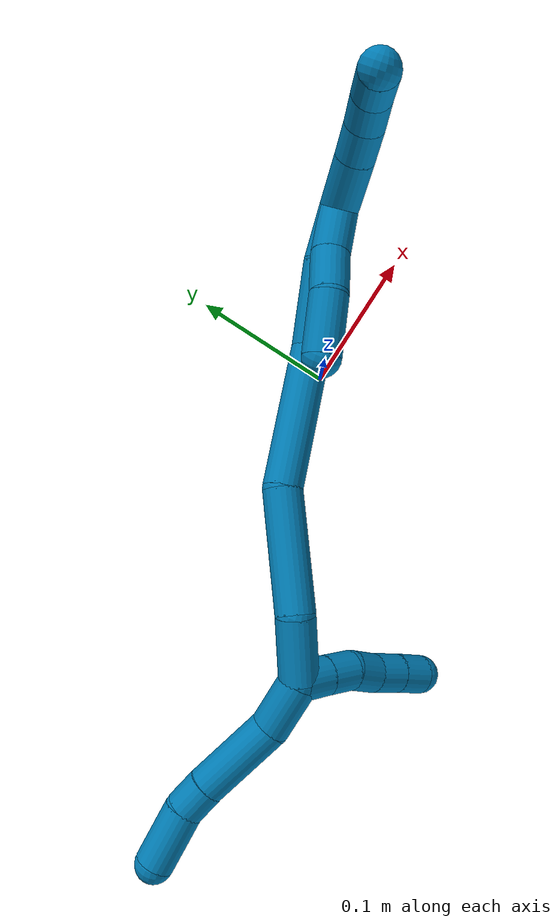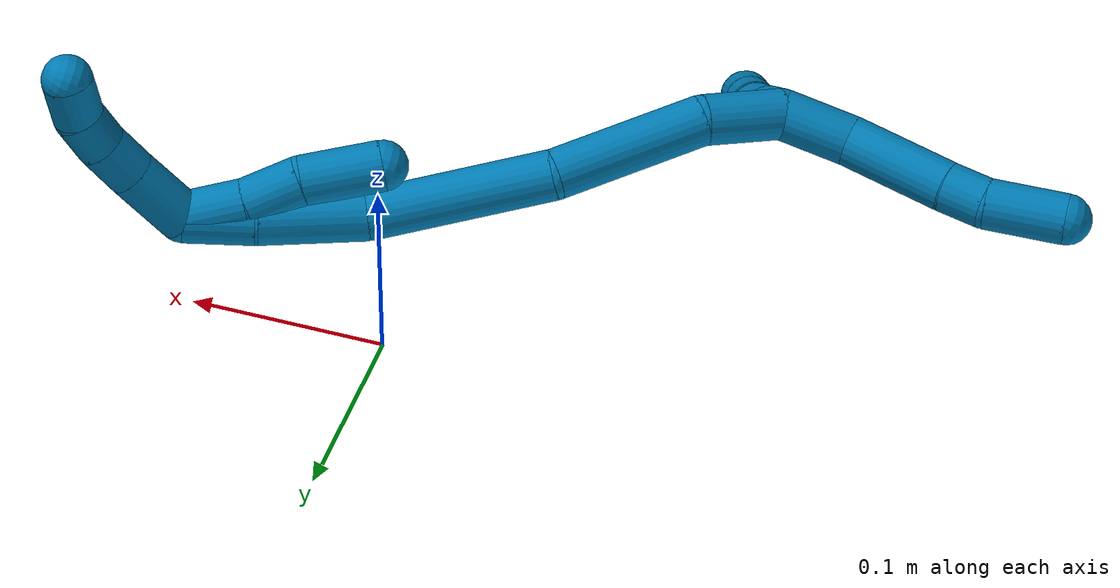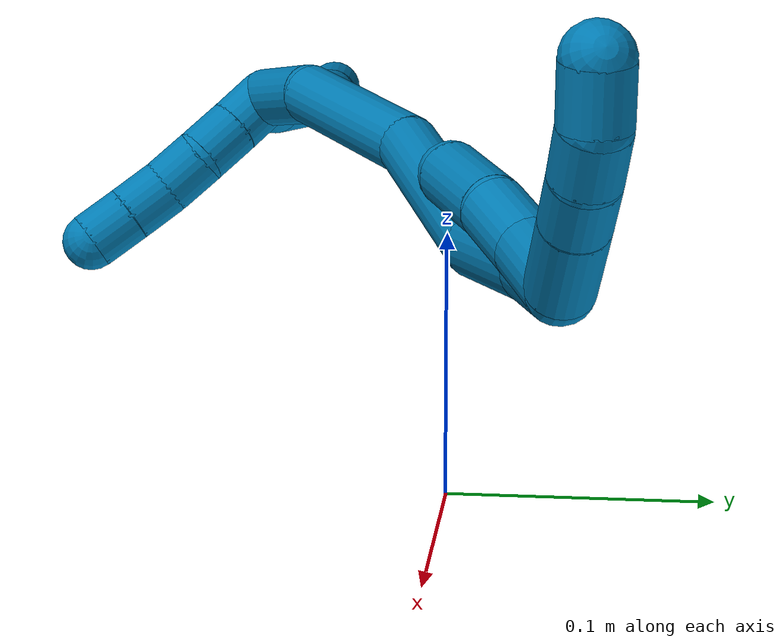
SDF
<sdf version="1.7">
 <world name="default">
  <model name="9">
   <static>0</static>
   <link name="9">
    <collision name="collision-cylinder-e_1_2_8">
     <pose>-0.003801 0.002553 -0.017281 -2.99493 -0.214232 1.94289</pose>
     <geometry><cylinder><radius>0.0125</radius><length>0.035754</length></cylinder></geometry>
     <surface>
      <friction><ode><mu>1.16</mu><mu2>1.16</mu2><slip1>0</slip1><slip2>0</slip2></ode></friction>
      <contact><ode><kp>1e+06</kp><kd>1</kd><max_vel>0</max_vel><min_depth>0.001</min_depth></ode></contact>
     </surface>
    </collision>
    <visual name="visual-cylinder-e_1_2_8">
     <pose>-0.003801 0.002553 -0.017281 -2.99493 -0.214232 1.94289</pose>
     <geometry><cylinder><radius>0.0125</radius><length>0.035754</length></cylinder></geometry>
     <material><ambient>0 0.490196 0.709804 1</ambient></material>
    </visual>
    <collision name="collision-cylinder-e_2_8_9">
     <pose>-0.018888 0.014871 -0.057192 -2.73423 -0.429416 1.62506</pose>
     <geometry><cylinder><radius>0.0125</radius><length>0.054219</length></cylinder></geometry>
     <surface>
      <friction><ode><mu>1.16</mu><mu2>1.16</mu2><slip1>0</slip1><slip2>0</slip2></ode></friction>
      <contact><ode><kp>1e+06</kp><kd>1</kd><max_vel>0</max_vel><min_depth>0.001</min_depth></ode></contact>
     </surface>
    </collision>
    <visual name="visual-cylinder-e_2_8_9">
     <pose>-0.018888 0.014871 -0.057192 -2.73423 -0.429416 1.62506</pose>
     <geometry><cylinder><radius>0.0125</radius><length>0.054219</length></cylinder></geometry>
     <material><ambient>0 0.490196 0.709804 1</ambient></material>
    </visual>
    <collision name="collision-cylinder-e_3_9_10">
     <pose>-0.034316 0.027725 -0.088781 -2.80953 -0.412095 1.79001</pose>
     <geometry><cylinder><radius>0.0125</radius><length>0.02068</length></cylinder></geometry>
     <surface>
      <friction><ode><mu>1.16</mu><mu2>1.16</mu2><slip1>0</slip1><slip2>0</slip2></ode></friction>
      <contact><ode><kp>1e+06</kp><kd>1</kd><max_vel>0</max_vel><min_depth>0.001</min_depth></ode></contact>
     </surface>
    </collision>
    <visual name="visual-cylinder-e_3_9_10">
     <pose>-0.034316 0.027725 -0.088781 -2.80953 -0.412095 1.79001</pose>
     <geometry><cylinder><radius>0.0125</radius><length>0.02068</length></cylinder></geometry>
     <material><ambient>0 0.490196 0.709804 1</ambient></material>
    </visual>
    <collision name="collision-cylinder-e_4_10_6">
     <pose>-0.046298 0.031823 -0.115753 -3.08561 -0.409884 2.87379</pose>
     <geometry><cylinder><radius>0.0125</radius><length>0.039347</length></cylinder></geometry>
     <surface>
      <friction><ode><mu>1.16</mu><mu2>1.16</mu2><slip1>0</slip1><slip2>0</slip2></ode></friction>
      <contact><ode><kp>1e+06</kp><kd>1</kd><max_vel>0</max_vel><min_depth>0.001</min_depth></ode></contact>
     </surface>
    </collision>
    <visual name="visual-cylinder-e_4_10_6">
     <pose>-0.046298 0.031823 -0.115753 -3.08561 -0.409884 2.87379</pose>
     <geometry><cylinder><radius>0.0125</radius><length>0.039347</length></cylinder></geometry>
     <material><ambient>0 0.490196 0.709804 1</ambient></material>
    </visual>
    <collision name="collision-cylinder-e_1_2_11">
     <pose>0.008554 -0.005144 0.000603 1.45418 1.02634 0.929483</pose>
     <geometry><cylinder><radius>0.0125</radius><length>0.02</length></cylinder></geometry>
     <surface>
      <friction><ode><mu>1.16</mu><mu2>1.16</mu2><slip1>0</slip1><slip2>0</slip2></ode></friction>
      <contact><ode><kp>1e+06</kp><kd>1</kd><max_vel>0</max_vel><min_depth>0.001</min_depth></ode></contact>
     </surface>
    </collision>
    <visual name="visual-cylinder-e_1_2_11">
     <pose>0.008554 -0.005144 0.000603 1.45418 1.02634 0.929483</pose>
     <geometry><cylinder><radius>0.0125</radius><length>0.02</length></cylinder></geometry>
     <material><ambient>0 0.490196 0.709804 1</ambient></material>
    </visual>
    <collision name="collision-cylinder-e_2_11_12">
     <pose>0.025571 -0.015592 0.001714 1.4752 1.00897 0.930059</pose>
     <geometry><cylinder><radius>0.0125</radius><length>0.02</length></cylinder></geometry>
     <surface>
      <friction><ode><mu>1.16</mu><mu2>1.16</mu2><slip1>0</slip1><slip2>0</slip2></ode></friction>
      <contact><ode><kp>1e+06</kp><kd>1</kd><max_vel>0</max_vel><min_depth>0.001</min_depth></ode></contact>
     </surface>
    </collision>
    <visual name="visual-cylinder-e_2_11_12">
     <pose>0.025571 -0.015592 0.001714 1.4752 1.00897 0.930059</pose>
     <geometry><cylinder><radius>0.0125</radius><length>0.02</length></cylinder></geometry>
     <material><ambient>0 0.490196 0.709804 1</ambient></material>
    </visual>
    <collision name="collision-cylinder-e_3_12_13">
     <pose>0.04199 -0.026502 -7.2e-05 1.95923 0.919981 1.27163</pose>
     <geometry><cylinder><radius>0.0125</radius><length>0.02</length></cylinder></geometry>
     <surface>
      <friction><ode><mu>1.16</mu><mu2>1.16</mu2><slip1>0</slip1><slip2>0</slip2></ode></friction>
      <contact><ode><kp>1e+06</kp><kd>1</kd><max_vel>0</max_vel><min_depth>0.001</min_depth></ode></contact>
     </surface>
    </collision>
    <visual name="visual-cylinder-e_3_12_13">
     <pose>0.04199 -0.026502 -7.2e-05 1.95923 0.919981 1.27163</pose>
     <geometry><cylinder><radius>0.0125</radius><length>0.02</length></cylinder></geometry>
     <material><ambient>0 0.490196 0.709804 1</ambient></material>
    </visual>
    <collision name="collision-cylinder-e_4_13_14">
     <pose>0.057776 -0.038277 -0.003164 1.69935 0.899545 1.00446</pose>
     <geometry><cylinder><radius>0.0125</radius><length>0.02</length></cylinder></geometry>
     <surface>
      <friction><ode><mu>1.16</mu><mu2>1.16</mu2><slip1>0</slip1><slip2>0</slip2></ode></friction>
      <contact><ode><kp>1e+06</kp><kd>1</kd><max_vel>0</max_vel><min_depth>0.001</min_depth></ode></contact>
     </surface>
    </collision>
    <visual name="visual-cylinder-e_4_13_14">
     <pose>0.057776 -0.038277 -0.003164 1.69935 0.899545 1.00446</pose>
     <geometry><cylinder><radius>0.0125</radius><length>0.02</length></cylinder></geometry>
     <material><ambient>0 0.490196 0.709804 1</ambient></material>
    </visual>
    <collision name="collision-cylinder-e_5_14_5">
     <pose>0.073309 -0.050731 -0.005038 1.74034 0.879224 1.01741</pose>
     <geometry><cylinder><radius>0.0125</radius><length>0.02</length></cylinder></geometry>
     <surface>
      <friction><ode><mu>1.16</mu><mu2>1.16</mu2><slip1>0</slip1><slip2>0</slip2></ode></friction>
      <contact><ode><kp>1e+06</kp><kd>1</kd><max_vel>0</max_vel><min_depth>0.001</min_depth></ode></contact>
     </surface>
    </collision>
    <visual name="visual-cylinder-e_5_14_5">
     <pose>0.073309 -0.050731 -0.005038 1.74034 0.879224 1.01741</pose>
     <geometry><cylinder><radius>0.0125</radius><length>0.02</length></cylinder></geometry>
     <material><ambient>0 0.490196 0.709804 1</ambient></material>
    </visual>
    <collision name="collision-cylinder-e_1_2_15">
     <pose>0.002221 0.008626 0.018654 -0.433137 0.107669 -0.023711</pose>
     <geometry><cylinder><radius>0.0125</radius><length>0.041343</length></cylinder></geometry>
     <surface>
      <friction><ode><mu>1.16</mu><mu2>1.16</mu2><slip1>0</slip1><slip2>0</slip2></ode></friction>
      <contact><ode><kp>1e+06</kp><kd>1</kd><max_vel>0</max_vel><min_depth>0.001</min_depth></ode></contact>
     </surface>
    </collision>
    <visual name="visual-cylinder-e_1_2_15">
     <pose>0.002221 0.008626 0.018654 -0.433137 0.107669 -0.023711</pose>
     <geometry><cylinder><radius>0.0125</radius><length>0.041343</length></cylinder></geometry>
     <material><ambient>0 0.490196 0.709804 1</ambient></material>
    </visual>
    <collision name="collision-cylinder-e_2_15_16">
     <pose>0.018258 0.038136 0.066428 -0.622152 0.367965 -0.119517</pose>
     <geometry><cylinder><radius>0.0125</radius><length>0.076811</length></cylinder></geometry>
     <surface>
      <friction><ode><mu>1.16</mu><mu2>1.16</mu2><slip1>0</slip1><slip2>0</slip2></ode></friction>
      <contact><ode><kp>1e+06</kp><kd>1</kd><max_vel>0</max_vel><min_depth>0.001</min_depth></ode></contact>
     </surface>
    </collision>
    <visual name="visual-cylinder-e_2_15_16">
     <pose>0.018258 0.038136 0.066428 -0.622152 0.367965 -0.119517</pose>
     <geometry><cylinder><radius>0.0125</radius><length>0.076811</length></cylinder></geometry>
     <material><ambient>0 0.490196 0.709804 1</ambient></material>
    </visual>
    <collision name="collision-cylinder-e_3_16_17">
     <pose>0.05747 0.072943 0.131769 -0.36699 0.57951 -0.110549</pose>
     <geometry><cylinder><radius>0.0125</radius><length>0.092754</length></cylinder></geometry>
     <surface>
      <friction><ode><mu>1.16</mu><mu2>1.16</mu2><slip1>0</slip1><slip2>0</slip2></ode></friction>
      <contact><ode><kp>1e+06</kp><kd>1</kd><max_vel>0</max_vel><min_depth>0.001</min_depth></ode></contact>
     </surface>
    </collision>
    <visual name="visual-cylinder-e_3_16_17">
     <pose>0.05747 0.072943 0.131769 -0.36699 0.57951 -0.110549</pose>
     <geometry><cylinder><radius>0.0125</radius><length>0.092754</length></cylinder></geometry>
     <material><ambient>0 0.490196 0.709804 1</ambient></material>
    </visual>
    <collision name="collision-cylinder-e_4_17_18">
     <pose>0.090654 0.094531 0.192704 -0.300722 0.292353 -0.044604</pose>
     <geometry><cylinder><radius>0.0125</radius><length>0.054043</length></cylinder></geometry>
     <surface>
      <friction><ode><mu>1.16</mu><mu2>1.16</mu2><slip1>0</slip1><slip2>0</slip2></ode></friction>
      <contact><ode><kp>1e+06</kp><kd>1</kd><max_vel>0</max_vel><min_depth>0.001</min_depth></ode></contact>
     </surface>
    </collision>
    <visual name="visual-cylinder-e_4_17_18">
     <pose>0.090654 0.094531 0.192704 -0.300722 0.292353 -0.044604</pose>
     <geometry><cylinder><radius>0.0125</radius><length>0.054043</length></cylinder></geometry>
     <material><ambient>0 0.490196 0.709804 1</ambient></material>
    </visual>
    <collision name="collision-cylinder-e_5_18_1">
     <pose>0.104689 0.104995 0.23355 -0.171833 0.364497 -0.031743</pose>
     <geometry><cylinder><radius>0.0125</radius><length>0.035049</length></cylinder></geometry>
     <surface>
      <friction><ode><mu>1.16</mu><mu2>1.16</mu2><slip1>0</slip1><slip2>0</slip2></ode></friction>
      <contact><ode><kp>1e+06</kp><kd>1</kd><max_vel>0</max_vel><min_depth>0.001</min_depth></ode></contact>
     </surface>
    </collision>
    <visual name="visual-cylinder-e_5_18_1">
     <pose>0.104689 0.104995 0.23355 -0.171833 0.364497 -0.031743</pose>
     <geometry><cylinder><radius>0.0125</radius><length>0.035049</length></cylinder></geometry>
     <material><ambient>0 0.490196 0.709804 1</ambient></material>
    </visual>
    <collision name="collision-cylinder-e_1_1_19">
     <pose>0.102567 0.102878 0.23719 2.76656 -0.557459 -1.97063</pose>
     <geometry><cylinder><radius>0.0125</radius><length>0.03164</length></cylinder></geometry>
     <surface>
      <friction><ode><mu>1.16</mu><mu2>1.16</mu2><slip1>0</slip1><slip2>0</slip2></ode></friction>
      <contact><ode><kp>1e+06</kp><kd>1</kd><max_vel>0</max_vel><min_depth>0.001</min_depth></ode></contact>
     </surface>
    </collision>
    <visual name="visual-cylinder-e_1_1_19">
     <pose>0.102567 0.102878 0.23719 2.76656 -0.557459 -1.97063</pose>
     <geometry><cylinder><radius>0.0125</radius><length>0.03164</length></cylinder></geometry>
     <material><ambient>0 0.490196 0.709804 1</ambient></material>
    </visual>
    <collision name="collision-cylinder-e_2_19_20">
     <pose>0.086131 0.091548 0.214952 2.55973 -0.604977 -1.61212</pose>
     <geometry><cylinder><radius>0.0125</radius><length>0.028367</length></cylinder></geometry>
     <surface>
      <friction><ode><mu>1.16</mu><mu2>1.16</mu2><slip1>0</slip1><slip2>0</slip2></ode></friction>
      <contact><ode><kp>1e+06</kp><kd>1</kd><max_vel>0</max_vel><min_depth>0.001</min_depth></ode></contact>
     </surface>
    </collision>
    <visual name="visual-cylinder-e_2_19_20">
     <pose>0.086131 0.091548 0.214952 2.55973 -0.604977 -1.61212</pose>
     <geometry><cylinder><radius>0.0125</radius><length>0.028367</length></cylinder></geometry>
     <material><ambient>0 0.490196 0.709804 1</ambient></material>
    </visual>
    <collision name="collision-cylinder-e_3_20_4">
     <pose>0.069329 0.078203 0.188608 2.74587 -0.452077 -1.70758</pose>
     <geometry><cylinder><radius>0.0125</radius><length>0.039993</length></cylinder></geometry>
     <surface>
      <friction><ode><mu>1.16</mu><mu2>1.16</mu2><slip1>0</slip1><slip2>0</slip2></ode></friction>
      <contact><ode><kp>1e+06</kp><kd>1</kd><max_vel>0</max_vel><min_depth>0.001</min_depth></ode></contact>
     </surface>
    </collision>
    <visual name="visual-cylinder-e_3_20_4">
     <pose>0.069329 0.078203 0.188608 2.74587 -0.452077 -1.70758</pose>
     <geometry><cylinder><radius>0.0125</radius><length>0.039993</length></cylinder></geometry>
     <material><ambient>0 0.490196 0.709804 1</ambient></material>
    </visual>
    <collision name="collision-cylinder-e_1_1_21">
     <pose>0.103954 0.10534 0.266072 0.148664 -0.39875 -0.030092</pose>
     <geometry><cylinder><radius>0.0125</radius><length>0.035968</length></cylinder></geometry>
     <surface>
      <friction><ode><mu>1.16</mu><mu2>1.16</mu2><slip1>0</slip1><slip2>0</slip2></ode></friction>
      <contact><ode><kp>1e+06</kp><kd>1</kd><max_vel>0</max_vel><min_depth>0.001</min_depth></ode></contact>
     </surface>
    </collision>
    <visual name="visual-cylinder-e_1_1_21">
     <pose>0.103954 0.10534 0.266072 0.148664 -0.39875 -0.030092</pose>
     <geometry><cylinder><radius>0.0125</radius><length>0.035968</length></cylinder></geometry>
     <material><ambient>0 0.490196 0.709804 1</ambient></material>
    </visual>
    <collision name="collision-cylinder-e_2_21_22">
     <pose>0.092295 0.101403 0.292024 0.153857 -0.45015 -0.035292</pose>
     <geometry><cylinder><radius>0.0125</radius><length>0.021494</length></cylinder></geometry>
     <surface>
      <friction><ode><mu>1.16</mu><mu2>1.16</mu2><slip1>0</slip1><slip2>0</slip2></ode></friction>
      <contact><ode><kp>1e+06</kp><kd>1</kd><max_vel>0</max_vel><min_depth>0.001</min_depth></ode></contact>
     </surface>
    </collision>
    <visual name="visual-cylinder-e_2_21_22">
     <pose>0.092295 0.101403 0.292024 0.153857 -0.45015 -0.035292</pose>
     <geometry><cylinder><radius>0.0125</radius><length>0.021494</length></cylinder></geometry>
     <material><ambient>0 0.490196 0.709804 1</ambient></material>
    </visual>
    <collision name="collision-cylinder-e_3_22_23">
     <pose>0.081767 0.098359 0.309827 0.187171 -0.609221 -0.059001</pose>
     <geometry><cylinder><radius>0.0125</radius><length>0.020455</length></cylinder></geometry>
     <surface>
      <friction><ode><mu>1.16</mu><mu2>1.16</mu2><slip1>0</slip1><slip2>0</slip2></ode></friction>
      <contact><ode><kp>1e+06</kp><kd>1</kd><max_vel>0</max_vel><min_depth>0.001</min_depth></ode></contact>
     </surface>
    </collision>
    <visual name="visual-cylinder-e_3_22_23">
     <pose>0.081767 0.098359 0.309827 0.187171 -0.609221 -0.059001</pose>
     <geometry><cylinder><radius>0.0125</radius><length>0.020455</length></cylinder></geometry>
     <material><ambient>0 0.490196 0.709804 1</ambient></material>
    </visual>
    <collision name="collision-cylinder-e_4_23_3">
     <pose>0.06741 0.093877 0.324476 0.427801 -0.879119 -0.203589</pose>
     <geometry><cylinder><radius>0.0125</radius><length>0.022084</length></cylinder></geometry>
     <surface>
      <friction><ode><mu>1.16</mu><mu2>1.16</mu2><slip1>0</slip1><slip2>0</slip2></ode></friction>
      <contact><ode><kp>1e+06</kp><kd>1</kd><max_vel>0</max_vel><min_depth>0.001</min_depth></ode></contact>
     </surface>
    </collision>
    <visual name="visual-cylinder-e_4_23_3">
     <pose>0.06741 0.093877 0.324476 0.427801 -0.879119 -0.203589</pose>
     <geometry><cylinder><radius>0.0125</radius><length>0.022084</length></cylinder></geometry>
     <material><ambient>0 0.490196 0.709804 1</ambient></material>
    </visual>
    <collision name="collision-sphere-3">
     <pose>0.058906 0.090955 0.330885 0 -0 0</pose>
     <geometry><sphere><radius>0.0125</radius></sphere></geometry>
     <surface>
      <friction><ode><mu>1.16</mu><mu2>1.16</mu2><slip1>0</slip1><slip2>0</slip2></ode></friction>
      <contact><ode><kp>1e+06</kp><kd>1</kd><max_vel>0</max_vel><min_depth>0.001</min_depth></ode></contact>
     </surface>
    </collision>
    <visual name="visual-sphere-3">
     <pose>0.058906 0.090955 0.330885 0 -0 0</pose>
     <geometry><sphere><radius>0.0125</radius></sphere></geometry>
     <material><ambient>0 0.490196 0.709804 1</ambient></material>
    </visual>
    <collision name="collision-sphere-23">
     <pose>0.075914 0.096798 0.318068 0 -0 0</pose>
     <geometry><sphere><radius>0.0125</radius></sphere></geometry>
     <surface>
      <friction><ode><mu>1.16</mu><mu2>1.16</mu2><slip1>0</slip1><slip2>0</slip2></ode></friction>
      <contact><ode><kp>1e+06</kp><kd>1</kd><max_vel>0</max_vel><min_depth>0.001</min_depth></ode></contact>
     </surface>
    </collision>
    <visual name="visual-sphere-23">
     <pose>0.075914 0.096798 0.318068 0 -0 0</pose>
     <geometry><sphere><radius>0.0125</radius></sphere></geometry>
     <material><ambient>0 0.490196 0.709804 1</ambient></material>
    </visual>
    <collision name="collision-sphere-22">
     <pose>0.087619 0.09992 0.301586 0 -0 0</pose>
     <geometry><sphere><radius>0.0125</radius></sphere></geometry>
     <surface>
      <friction><ode><mu>1.16</mu><mu2>1.16</mu2><slip1>0</slip1><slip2>0</slip2></ode></friction>
      <contact><ode><kp>1e+06</kp><kd>1</kd><max_vel>0</max_vel><min_depth>0.001</min_depth></ode></contact>
     </surface>
    </collision>
    <visual name="visual-sphere-22">
     <pose>0.087619 0.09992 0.301586 0 -0 0</pose>
     <geometry><sphere><radius>0.0125</radius></sphere></geometry>
     <material><ambient>0 0.490196 0.709804 1</ambient></material>
    </visual>
    <collision name="collision-sphere-21">
     <pose>0.096971 0.102886 0.282462 0 -0 0</pose>
     <geometry><sphere><radius>0.0125</radius></sphere></geometry>
     <surface>
      <friction><ode><mu>1.16</mu><mu2>1.16</mu2><slip1>0</slip1><slip2>0</slip2></ode></friction>
      <contact><ode><kp>1e+06</kp><kd>1</kd><max_vel>0</max_vel><min_depth>0.001</min_depth></ode></contact>
     </surface>
    </collision>
    <visual name="visual-sphere-21">
     <pose>0.096971 0.102886 0.282462 0 -0 0</pose>
     <geometry><sphere><radius>0.0125</radius></sphere></geometry>
     <material><ambient>0 0.490196 0.709804 1</ambient></material>
    </visual>
    <collision name="collision-sphere-4">
     <pose>0.060594 0.071269 0.172011 0 -0 0</pose>
     <geometry><sphere><radius>0.0125</radius></sphere></geometry>
     <surface>
      <friction><ode><mu>1.16</mu><mu2>1.16</mu2><slip1>0</slip1><slip2>0</slip2></ode></friction>
      <contact><ode><kp>1e+06</kp><kd>1</kd><max_vel>0</max_vel><min_depth>0.001</min_depth></ode></contact>
     </surface>
    </collision>
    <visual name="visual-sphere-4">
     <pose>0.060594 0.071269 0.172011 0 -0 0</pose>
     <geometry><sphere><radius>0.0125</radius></sphere></geometry>
     <material><ambient>0 0.490196 0.709804 1</ambient></material>
    </visual>
    <collision name="collision-sphere-20">
     <pose>0.078064 0.085137 0.205206 0 -0 0</pose>
     <geometry><sphere><radius>0.0125</radius></sphere></geometry>
     <surface>
      <friction><ode><mu>1.16</mu><mu2>1.16</mu2><slip1>0</slip1><slip2>0</slip2></ode></friction>
      <contact><ode><kp>1e+06</kp><kd>1</kd><max_vel>0</max_vel><min_depth>0.001</min_depth></ode></contact>
     </surface>
    </collision>
    <visual name="visual-sphere-20">
     <pose>0.078064 0.085137 0.205206 0 -0 0</pose>
     <geometry><sphere><radius>0.0125</radius></sphere></geometry>
     <material><ambient>0 0.490196 0.709804 1</ambient></material>
    </visual>
    <collision name="collision-sphere-11">
     <pose>0.017108 -0.010289 0.001205 0 -0 0</pose>
     <geometry><sphere><radius>0.0125</radius></sphere></geometry>
     <surface>
      <friction><ode><mu>1.16</mu><mu2>1.16</mu2><slip1>0</slip1><slip2>0</slip2></ode></friction>
      <contact><ode><kp>1e+06</kp><kd>1</kd><max_vel>0</max_vel><min_depth>0.001</min_depth></ode></contact>
     </surface>
    </collision>
    <visual name="visual-sphere-11">
     <pose>0.017108 -0.010289 0.001205 0 -0 0</pose>
     <geometry><sphere><radius>0.0125</radius></sphere></geometry>
     <material><ambient>0 0.490196 0.709804 1</ambient></material>
    </visual>
    <collision name="collision-sphere-6">
     <pose>-0.054138 0.032833 -0.133769 0 -0 0</pose>
     <geometry><sphere><radius>0.0125</radius></sphere></geometry>
     <surface>
      <friction><ode><mu>1.16</mu><mu2>1.16</mu2><slip1>0</slip1><slip2>0</slip2></ode></friction>
      <contact><ode><kp>1e+06</kp><kd>1</kd><max_vel>0</max_vel><min_depth>0.001</min_depth></ode></contact>
     </surface>
    </collision>
    <visual name="visual-sphere-6">
     <pose>-0.054138 0.032833 -0.133769 0 -0 0</pose>
     <geometry><sphere><radius>0.0125</radius></sphere></geometry>
     <material><ambient>0 0.490196 0.709804 1</ambient></material>
    </visual>
    <collision name="collision-sphere-10">
     <pose>-0.038458 0.030813 -0.097738 0 -0 0</pose>
     <geometry><sphere><radius>0.0125</radius></sphere></geometry>
     <surface>
      <friction><ode><mu>1.16</mu><mu2>1.16</mu2><slip1>0</slip1><slip2>0</slip2></ode></friction>
      <contact><ode><kp>1e+06</kp><kd>1</kd><max_vel>0</max_vel><min_depth>0.001</min_depth></ode></contact>
     </surface>
    </collision>
    <visual name="visual-sphere-10">
     <pose>-0.038458 0.030813 -0.097738 0 -0 0</pose>
     <geometry><sphere><radius>0.0125</radius></sphere></geometry>
     <material><ambient>0 0.490196 0.709804 1</ambient></material>
    </visual>
    <collision name="collision-sphere-9">
     <pose>-0.030175 0.024636 -0.079824 0 -0 0</pose>
     <geometry><sphere><radius>0.0125</radius></sphere></geometry>
     <surface>
      <friction><ode><mu>1.16</mu><mu2>1.16</mu2><slip1>0</slip1><slip2>0</slip2></ode></friction>
      <contact><ode><kp>1e+06</kp><kd>1</kd><max_vel>0</max_vel><min_depth>0.001</min_depth></ode></contact>
     </surface>
    </collision>
    <visual name="visual-sphere-9">
     <pose>-0.030175 0.024636 -0.079824 0 -0 0</pose>
     <geometry><sphere><radius>0.0125</radius></sphere></geometry>
     <material><ambient>0 0.490196 0.709804 1</ambient></material>
    </visual>
    <collision name="collision-sphere-2">
     <geometry><sphere><radius>0.0125</radius></sphere></geometry>
     <surface>
      <friction><ode><mu>1.16</mu><mu2>1.16</mu2><slip1>0</slip1><slip2>0</slip2></ode></friction>
      <contact><ode><kp>1e+06</kp><kd>1</kd><max_vel>0</max_vel><min_depth>0.001</min_depth></ode></contact>
     </surface>
    </collision>
    <visual name="visual-sphere-2">
     <geometry><sphere><radius>0.0125</radius></sphere></geometry>
     <material><ambient>0 0.490196 0.709804 1</ambient></material>
    </visual>
    <collision name="collision-sphere-19">
     <pose>0.094198 0.09796 0.224699 0 -0 0</pose>
     <geometry><sphere><radius>0.0125</radius></sphere></geometry>
     <surface>
      <friction><ode><mu>1.16</mu><mu2>1.16</mu2><slip1>0</slip1><slip2>0</slip2></ode></friction>
      <contact><ode><kp>1e+06</kp><kd>1</kd><max_vel>0</max_vel><min_depth>0.001</min_depth></ode></contact>
     </surface>
    </collision>
    <visual name="visual-sphere-19">
     <pose>0.094198 0.09796 0.224699 0 -0 0</pose>
     <geometry><sphere><radius>0.0125</radius></sphere></geometry>
     <material><ambient>0 0.490196 0.709804 1</ambient></material>
    </visual>
    <collision name="collision-sphere-8">
     <pose>-0.007601 0.005105 -0.034561 0 -0 0</pose>
     <geometry><sphere><radius>0.0125</radius></sphere></geometry>
     <surface>
      <friction><ode><mu>1.16</mu><mu2>1.16</mu2><slip1>0</slip1><slip2>0</slip2></ode></friction>
      <contact><ode><kp>1e+06</kp><kd>1</kd><max_vel>0</max_vel><min_depth>0.001</min_depth></ode></contact>
     </surface>
    </collision>
    <visual name="visual-sphere-8">
     <pose>-0.007601 0.005105 -0.034561 0 -0 0</pose>
     <geometry><sphere><radius>0.0125</radius></sphere></geometry>
     <material><ambient>0 0.490196 0.709804 1</ambient></material>
    </visual>
    <collision name="collision-sphere-12">
     <pose>0.034034 -0.020895 0.002222 0 -0 0</pose>
     <geometry><sphere><radius>0.0125</radius></sphere></geometry>
     <surface>
      <friction><ode><mu>1.16</mu><mu2>1.16</mu2><slip1>0</slip1><slip2>0</slip2></ode></friction>
      <contact><ode><kp>1e+06</kp><kd>1</kd><max_vel>0</max_vel><min_depth>0.001</min_depth></ode></contact>
     </surface>
    </collision>
    <visual name="visual-sphere-12">
     <pose>0.034034 -0.020895 0.002222 0 -0 0</pose>
     <geometry><sphere><radius>0.0125</radius></sphere></geometry>
     <material><ambient>0 0.490196 0.709804 1</ambient></material>
    </visual>
    <collision name="collision-sphere-13">
     <pose>0.049946 -0.032109 -0.002367 0 -0 0</pose>
     <geometry><sphere><radius>0.0125</radius></sphere></geometry>
     <surface>
      <friction><ode><mu>1.16</mu><mu2>1.16</mu2><slip1>0</slip1><slip2>0</slip2></ode></friction>
      <contact><ode><kp>1e+06</kp><kd>1</kd><max_vel>0</max_vel><min_depth>0.001</min_depth></ode></contact>
     </surface>
    </collision>
    <visual name="visual-sphere-13">
     <pose>0.049946 -0.032109 -0.002367 0 -0 0</pose>
     <geometry><sphere><radius>0.0125</radius></sphere></geometry>
     <material><ambient>0 0.490196 0.709804 1</ambient></material>
    </visual>
    <collision name="collision-sphere-14">
     <pose>0.065607 -0.044445 -0.003961 0 -0 0</pose>
     <geometry><sphere><radius>0.0125</radius></sphere></geometry>
     <surface>
      <friction><ode><mu>1.16</mu><mu2>1.16</mu2><slip1>0</slip1><slip2>0</slip2></ode></friction>
      <contact><ode><kp>1e+06</kp><kd>1</kd><max_vel>0</max_vel><min_depth>0.001</min_depth></ode></contact>
     </surface>
    </collision>
    <visual name="visual-sphere-14">
     <pose>0.065607 -0.044445 -0.003961 0 -0 0</pose>
     <geometry><sphere><radius>0.0125</radius></sphere></geometry>
     <material><ambient>0 0.490196 0.709804 1</ambient></material>
    </visual>
    <collision name="collision-sphere-5">
     <pose>0.081011 -0.057017 -0.006114 0 -0 0</pose>
     <geometry><sphere><radius>0.0125</radius></sphere></geometry>
     <surface>
      <friction><ode><mu>1.16</mu><mu2>1.16</mu2><slip1>0</slip1><slip2>0</slip2></ode></friction>
      <contact><ode><kp>1e+06</kp><kd>1</kd><max_vel>0</max_vel><min_depth>0.001</min_depth></ode></contact>
     </surface>
    </collision>
    <visual name="visual-sphere-5">
     <pose>0.081011 -0.057017 -0.006114 0 -0 0</pose>
     <geometry><sphere><radius>0.0125</radius></sphere></geometry>
     <material><ambient>0 0.490196 0.709804 1</ambient></material>
    </visual>
    <collision name="collision-sphere-15">
     <pose>0.004443 0.017252 0.037308 0 -0 0</pose>
     <geometry><sphere><radius>0.0125</radius></sphere></geometry>
     <surface>
      <friction><ode><mu>1.16</mu><mu2>1.16</mu2><slip1>0</slip1><slip2>0</slip2></ode></friction>
      <contact><ode><kp>1e+06</kp><kd>1</kd><max_vel>0</max_vel><min_depth>0.001</min_depth></ode></contact>
     </surface>
    </collision>
    <visual name="visual-sphere-15">
     <pose>0.004443 0.017252 0.037308 0 -0 0</pose>
     <geometry><sphere><radius>0.0125</radius></sphere></geometry>
     <material><ambient>0 0.490196 0.709804 1</ambient></material>
    </visual>
    <collision name="collision-sphere-16">
     <pose>0.032073 0.05902 0.095548 0 -0 0</pose>
     <geometry><sphere><radius>0.0125</radius></sphere></geometry>
     <surface>
      <friction><ode><mu>1.16</mu><mu2>1.16</mu2><slip1>0</slip1><slip2>0</slip2></ode></friction>
      <contact><ode><kp>1e+06</kp><kd>1</kd><max_vel>0</max_vel><min_depth>0.001</min_depth></ode></contact>
     </surface>
    </collision>
    <visual name="visual-sphere-16">
     <pose>0.032073 0.05902 0.095548 0 -0 0</pose>
     <geometry><sphere><radius>0.0125</radius></sphere></geometry>
     <material><ambient>0 0.490196 0.709804 1</ambient></material>
    </visual>
    <collision name="collision-sphere-17">
     <pose>0.082866 0.086867 0.16799 0 -0 0</pose>
     <geometry><sphere><radius>0.0125</radius></sphere></geometry>
     <surface>
      <friction><ode><mu>1.16</mu><mu2>1.16</mu2><slip1>0</slip1><slip2>0</slip2></ode></friction>
      <contact><ode><kp>1e+06</kp><kd>1</kd><max_vel>0</max_vel><min_depth>0.001</min_depth></ode></contact>
     </surface>
    </collision>
    <visual name="visual-sphere-17">
     <pose>0.082866 0.086867 0.16799 0 -0 0</pose>
     <geometry><sphere><radius>0.0125</radius></sphere></geometry>
     <material><ambient>0 0.490196 0.709804 1</ambient></material>
    </visual>
    <collision name="collision-sphere-18">
     <pose>0.098442 0.102196 0.217418 0 -0 0</pose>
     <geometry><sphere><radius>0.0125</radius></sphere></geometry>
     <surface>
      <friction><ode><mu>1.16</mu><mu2>1.16</mu2><slip1>0</slip1><slip2>0</slip2></ode></friction>
      <contact><ode><kp>1e+06</kp><kd>1</kd><max_vel>0</max_vel><min_depth>0.001</min_depth></ode></contact>
     </surface>
    </collision>
    <visual name="visual-sphere-18">
     <pose>0.098442 0.102196 0.217418 0 -0 0</pose>
     <geometry><sphere><radius>0.0125</radius></sphere></geometry>
     <material><ambient>0 0.490196 0.709804 1</ambient></material>
    </visual>
    <collision name="collision-sphere-1">
     <pose>0.110936 0.107795 0.249682 0 -0 0</pose>
     <geometry><sphere><radius>0.0125</radius></sphere></geometry>
     <surface>
      <friction><ode><mu>1.16</mu><mu2>1.16</mu2><slip1>0</slip1><slip2>0</slip2></ode></friction>
      <contact><ode><kp>1e+06</kp><kd>1</kd><max_vel>0</max_vel><min_depth>0.001</min_depth></ode></contact>
     </surface>
    </collision>
    <visual name="visual-sphere-1">
     <pose>0.110936 0.107795 0.249682 0 -0 0</pose>
     <geometry><sphere><radius>0.0125</radius></sphere></geometry>
     <material><ambient>0 0.490196 0.709804 1</ambient></material>
    </visual>
    <inertial>
     <pose>0.044255 0.050495 0.102616 0 -0 0</pose>
     <mass>0.75</mass>
     <inertia>
      <ixx>0.000127</ixx>
      <ixy>0</ixy>
      <ixz>0</ixz>
      <iyy>0.000162</iyy>
      <iyz>0</iyz>
      <izz>-8.2e-05</izz>
     </inertia>
    </inertial>
   </link>
   <pose>-0.174588 -0.094111 0.121261 -0.568093 1.05464 -0.385625</pose>
  </model>
 </world>
</sdf>
